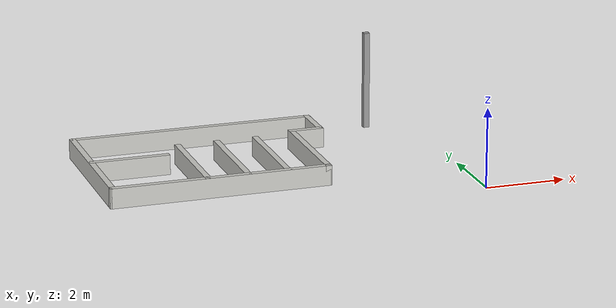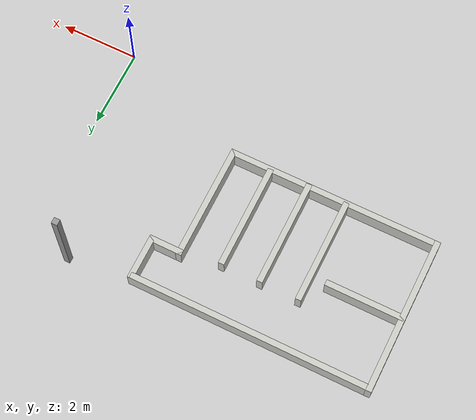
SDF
<?xml version='1.0'?>
<sdf version='1.7'>
  <model name='Almacen_demo'>
    <pose>-4.4805 2.78672 0 0 -0 0</pose>
    <link name='Wall_12'>
      <collision name='Wall_12_Collision'>
        <geometry>
          <box>
            <size>4.02 0.15 0.5</size>
          </box>
        </geometry>
        <pose>0 0 0.25 0 -0 0</pose>
      </collision>
      <visual name='Wall_12_Visual'>
        <pose>0 0 0.25 0 -0 0</pose>
        <geometry>
          <box>
            <size>4.02 0.15 0.5</size>
          </box>
        </geometry>
        <material>
          <script>
            <uri>file://media/materials/scripts/gazebo.material</uri>
            <name>Gazebo/CeilingTiled</name>
          </script>
          <ambient>1 1 1 1</ambient>
        </material>
        <meta>
          <layer>0</layer>
        </meta>
      </visual>
      <pose>-4.4055 0.603281 0 0 -0 1.5708</pose>
    </link>
    <link name='Wall_18'>
      <collision name='Wall_18_Collision'>
        <geometry>
          <box>
            <size>2 0.15 0.5</size>
          </box>
        </geometry>
        <pose>0 0 0.25 0 -0 0</pose>
      </collision>
      <visual name='Wall_18_Visual'>
        <pose>0 0 0.25 0 -0 0</pose>
        <geometry>
          <box>
            <size>2 0.15 0.5</size>
          </box>
        </geometry>
        <material>
          <script>
            <uri>file://media/materials/scripts/gazebo.material</uri>
            <name>Gazebo/CeilingTiled</name>
          </script>
          <ambient>1 1 1 1</ambient>
        </material>
        <meta>
          <layer>0</layer>
        </meta>
      </visual>
      <pose>-3.4495 0.682281 0 0 -0 0</pose>
    </link>
    <link name='Wall_25'>
      <collision name='Wall_25_Collision'>
        <geometry>
          <box>
            <size>0.89 0.15 0.5</size>
          </box>
        </geometry>
        <pose>0 0 0.25 0 -0 0</pose>
      </collision>
      <visual name='Wall_25_Visual'>
        <pose>0 0 0.25 0 -0 0</pose>
        <geometry>
          <box>
            <size>0.89 0.15 0.5</size>
          </box>
        </geometry>
        <material>
          <script>
            <uri>file://media/materials/scripts/gazebo.material</uri>
            <name>Gazebo/CeilingTiled</name>
          </script>
          <ambient>1 1 1 1</ambient>
        </material>
        <meta>
          <layer>0</layer>
        </meta>
      </visual>
      <pose>1.3245 1.51828 0 0 -0 0</pose>
    </link>
    <link name='Wall_27'>
      <collision name='Wall_27_Collision'>
        <geometry>
          <box>
            <size>2.75 0.15 0.5</size>
          </box>
        </geometry>
        <pose>0 0 0.25 0 -0 0</pose>
      </collision>
      <visual name='Wall_27_Visual'>
        <pose>0 0 0.25 0 -0 0</pose>
        <geometry>
          <box>
            <size>2.75 0.15 0.5</size>
          </box>
        </geometry>
        <material>
          <script>
            <uri>file://media/materials/scripts/gazebo.material</uri>
            <name>Gazebo/CeilingTiled</name>
          </script>
          <ambient>1 1 1 1</ambient>
        </material>
        <meta>
          <layer>0</layer>
        </meta>
      </visual>
      <pose>-0.0565 -0.018719 0 0 -0 1.5708</pose>
    </link>
    <link name='Wall_48'>
      <collision name='Wall_48_Collision'>
        <geometry>
          <box>
            <size>2.75 0.15 0.5</size>
          </box>
        </geometry>
        <pose>0 0 0.25 0 -0 0</pose>
      </collision>
      <visual name='Wall_48_Visual'>
        <pose>0 0 0.25 0 -0 0</pose>
        <geometry>
          <box>
            <size>2.75 0.15 0.5</size>
          </box>
        </geometry>
        <material>
          <script>
            <uri>file://media/materials/scripts/gazebo.material</uri>
            <name>Gazebo/CeilingTiled</name>
          </script>
          <ambient>1 1 1 1</ambient>
        </material>
        <meta>
          <layer>0</layer>
        </meta>
      </visual>
      <pose>-1.0565 -0.018719 0 0 -0 1.5708</pose>
    </link>
    <link name='Wall_57'>
      <collision name='Wall_57_Collision'>
        <geometry>
          <box>
            <size>2.75 0.15 0.5</size>
          </box>
        </geometry>
        <pose>0 0 0.25 0 -0 0</pose>
      </collision>
      <visual name='Wall_57_Visual'>
        <pose>0 0 0.25 0 -0 0</pose>
        <geometry>
          <box>
            <size>2.75 0.15 0.5</size>
          </box>
        </geometry>
        <material>
          <script>
            <uri>file://media/materials/scripts/gazebo.material</uri>
            <name>Gazebo/CeilingTiled</name>
          </script>
          <ambient>1 1 1 1</ambient>
        </material>
        <meta>
          <layer>0</layer>
        </meta>
      </visual>
      <pose>-2.0565 -0.018719 0 0 -0 1.5708</pose>
    </link>
    <link name='Wall_59'>
      <collision name='Wall_59_Collision'>
        <geometry>
          <box>
            <size>3 0.15 0.5</size>
          </box>
        </geometry>
        <pose>0 0 0.25 0 -0 0</pose>
      </collision>
      <visual name='Wall_59_Visual'>
        <pose>0 0 0.25 0 -0 0</pose>
        <geometry>
          <box>
            <size>3 0.15 0.5</size>
          </box>
        </geometry>
        <material>
          <script>
            <uri>file://media/materials/scripts/gazebo.material</uri>
            <name>Gazebo/CeilingTiled</name>
          </script>
          <ambient>1 1 1 1</ambient>
        </material>
        <meta>
          <layer>0</layer>
        </meta>
      </visual>
      <pose>0.9545 0.093282 0 0 -0 1.5708</pose>
    </link>
    <link name='Wall_73'>
      <collision name='Wall_73_Collision'>
        <geometry>
          <box>
            <size>0.15 0.15 2.5</size>
          </box>
        </geometry>
        <pose>0 0 1.25 0 -0 0</pose>
      </collision>
      <visual name='Wall_73_Visual'>
        <pose>0 0 1.25 0 -0 0</pose>
        <geometry>
          <box>
            <size>0.15 0.15 2.5</size>
          </box>
        </geometry>
        <material>
          <script>
            <uri>file://media/materials/scripts/gazebo.material</uri>
            <name>Gazebo/Grey</name>
          </script>
          <ambient>1 1 1 1</ambient>
        </material>
        <meta>
          <layer>0</layer>
        </meta>
      </visual>
      <pose>3.3352 2.71172 0 0 -0 0</pose>
    </link>
    <link name='Wall_88'>
      <collision name='Wall_88_Collision'>
        <geometry>
          <box>
            <size>6.25 0.15 0.5</size>
          </box>
        </geometry>
        <pose>0 0 0.25 0 -0 0</pose>
      </collision>
      <visual name='Wall_88_Visual'>
        <pose>0 0 0.25 0 -0 0</pose>
        <geometry>
          <box>
            <size>6.25 0.15 0.5</size>
          </box>
        </geometry>
        <material>
          <script>
            <uri>file://media/materials/scripts/gazebo.material</uri>
            <name>Gazebo/CeilingTiled</name>
          </script>
          <ambient>1 1 1 1</ambient>
        </material>
        <meta>
          <layer>0</layer>
        </meta>
      </visual>
      <pose>-1.3555 2.53828 0 0 -0 0</pose>
    </link>
    <link name='Wall_9'>
      <collision name='Wall_9_Collision'>
        <geometry>
          <box>
            <size>5.51 0.15 0.5</size>
          </box>
        </geometry>
        <pose>0 0 0.25 0 -0 0</pose>
      </collision>
      <visual name='Wall_9_Visual'>
        <pose>0 0 0.25 0 -0 0</pose>
        <geometry>
          <box>
            <size>5.51 0.15 0.5</size>
          </box>
        </geometry>
        <material>
          <script>
            <uri>file://media/materials/scripts/gazebo.material</uri>
            <name>Gazebo/CeilingTiled</name>
          </script>
          <ambient>1 1 1 1</ambient>
        </material>
        <meta>
          <layer>0</layer>
        </meta>
      </visual>
      <pose>-1.7255 -1.33172 0 0 -0 0</pose>
    </link>
    <link name='Wall_90'>
      <collision name='Wall_90_Collision'>
        <geometry>
          <box>
            <size>1.17 0.15 0.5</size>
          </box>
        </geometry>
        <pose>0 0 0.25 0 -0 0</pose>
      </collision>
      <visual name='Wall_90_Visual'>
        <pose>0 0 0.25 0 -0 0</pose>
        <geometry>
          <box>
            <size>1.17 0.15 0.5</size>
          </box>
        </geometry>
        <material>
          <script>
            <uri>file://media/materials/scripts/gazebo.material</uri>
            <name>Gazebo/CeilingTiled</name>
          </script>
          <ambient>1 1 1 1</ambient>
        </material>
        <meta>
          <layer>0</layer>
        </meta>
      </visual>
      <pose>1.6945 2.02828 0 0 -0 -1.5708</pose>
    </link>
    <static>1</static>
  </model>
</sdf>
